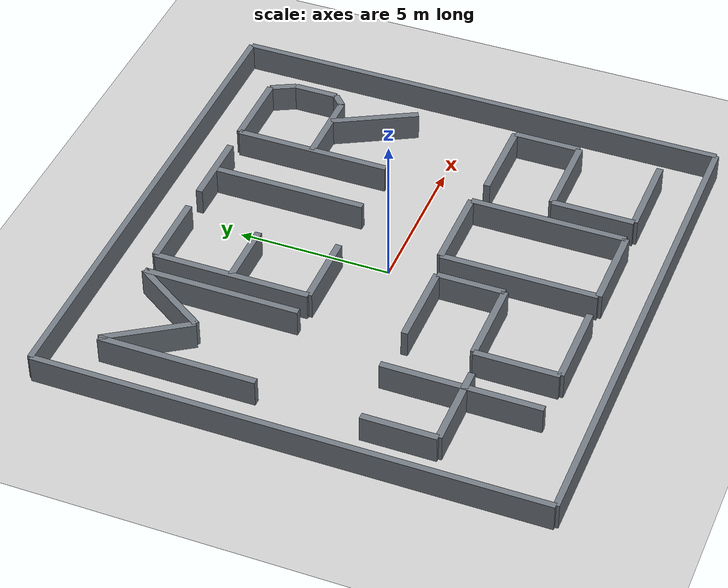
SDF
<?xml version='1.0' encoding='utf-8'?>
<sdf version="1.7">
  <world name="default">
    <light name="sun" type="directional">
      <cast_shadows>1</cast_shadows>
      <pose>0 0 10 0 -0 0</pose>
      <diffuse>0.8 0.8 0.8 1</diffuse>
      <specular>0.2 0.2 0.2 1</specular>
      <attenuation>
        <range>1000</range>
        <constant>0.9</constant>
        <linear>0.01</linear>
        <quadratic>0.001</quadratic>
      </attenuation>
      <direction>-0.5 0.1 -0.9</direction>
      <spot>
        <inner_angle>0</inner_angle>
        <outer_angle>0</outer_angle>
        <falloff>0</falloff>
      </spot>
    </light>
    <model name="ground_plane">
      <static>1</static>
      <link name="link">
        <collision name="collision">
          <geometry>
            <plane>
              <normal>0 0 1</normal>
              <size>100 100</size>
            </plane>
          </geometry>
          <surface>
            <contact>
              <collide_bitmask>65535</collide_bitmask>
              <ode />
            </contact>
            <friction>
              <ode>
                <mu>100</mu>
                <mu2>50</mu2>
              </ode>
              <torsional>
                <ode />
              </torsional>
            </friction>
            <bounce />
          </surface>
          <max_contacts>10</max_contacts>
        </collision>
        <visual name="visual">
          <cast_shadows>0</cast_shadows>
          <geometry>
            <plane>
              <normal>0 0 1</normal>
              <size>100 100</size>
            </plane>
          </geometry>
          <material>
            <script>
              <uri>file://media/materials/scripts/gazebo.material</uri>
              <name>Gazebo/Grey</name>
            </script>
          </material>
        </visual>
        <self_collide>0</self_collide>
        <enable_wind>0</enable_wind>
        <kinematic>0</kinematic>
      </link>
    </model>
    <gravity>0 0 -9.8</gravity>
    <magnetic_field>6e-06 2.3e-05 -4.2e-05</magnetic_field>
    <atmosphere type="adiabatic" />
    <physics type="ode">
      <max_step_size>0.001</max_step_size>
      <real_time_factor>1</real_time_factor>
      <real_time_update_rate>1000</real_time_update_rate>
    </physics>
    <scene>
      <ambient>0.4 0.4 0.4 1</ambient>
      <background>0.7 0.7 0.7 1</background>
      <shadows>1</shadows>
    </scene>
    <audio>
      <device>default</device>
    </audio>
    <wind />
    <spherical_coordinates>
      <surface_model>EARTH_WGS84</surface_model>
      <latitude_deg>0</latitude_deg>
      <longitude_deg>0</longitude_deg>
      <elevation>0</elevation>
      <heading_deg>0</heading_deg>
    </spherical_coordinates>
    <gui fullscreen="0">
      <camera name="user_camera">
        <pose>0 0 26 0 1.55 0</pose>
        <view_controller>orbit</view_controller>
        <projection_type>perspective</projection_type>
      </camera>
    </gui>
    <model name="letter_wall_000">
      <static>1</static>
      <pose>0.000000 -8.150000 0.450000 0 0 0.0000000</pose>
      <link name="link">
        <collision name="collision">
          <geometry>
            <box>
              <size>16.300000 0.200000 0.900000</size>
            </box>
          </geometry>
        </collision>
        <visual name="visual">
          <geometry>
            <box>
              <size>16.300000 0.200000 0.900000</size>
            </box>
          </geometry>
          <material>
            <ambient>0.32 0.34 0.38 1</ambient>
            <diffuse>0.45 0.48 0.51 1</diffuse>
            <specular>0.08 0.08 0.08 1</specular>
          </material>
        </visual>
        <self_collide>0</self_collide>
      </link>
    </model>
    <model name="letter_wall_001">
      <static>1</static>
      <pose>8.150000 0.000000 0.450000 0 0 1.5707963</pose>
      <link name="link">
        <collision name="collision">
          <geometry>
            <box>
              <size>16.300000 0.200000 0.900000</size>
            </box>
          </geometry>
        </collision>
        <visual name="visual">
          <geometry>
            <box>
              <size>16.300000 0.200000 0.900000</size>
            </box>
          </geometry>
          <material>
            <ambient>0.32 0.34 0.38 1</ambient>
            <diffuse>0.45 0.48 0.51 1</diffuse>
            <specular>0.08 0.08 0.08 1</specular>
          </material>
        </visual>
        <self_collide>0</self_collide>
      </link>
    </model>
    <model name="letter_wall_002">
      <static>1</static>
      <pose>0.000000 8.150000 0.450000 0 0 3.1415927</pose>
      <link name="link">
        <collision name="collision">
          <geometry>
            <box>
              <size>16.300000 0.200000 0.900000</size>
            </box>
          </geometry>
        </collision>
        <visual name="visual">
          <geometry>
            <box>
              <size>16.300000 0.200000 0.900000</size>
            </box>
          </geometry>
          <material>
            <ambient>0.32 0.34 0.38 1</ambient>
            <diffuse>0.45 0.48 0.51 1</diffuse>
            <specular>0.08 0.08 0.08 1</specular>
          </material>
        </visual>
        <self_collide>0</self_collide>
      </link>
    </model>
    <model name="letter_wall_003">
      <static>1</static>
      <pose>-8.150000 0.000000 0.450000 0 0 -1.5707963</pose>
      <link name="link">
        <collision name="collision">
          <geometry>
            <box>
              <size>16.300000 0.200000 0.900000</size>
            </box>
          </geometry>
        </collision>
        <visual name="visual">
          <geometry>
            <box>
              <size>16.300000 0.200000 0.900000</size>
            </box>
          </geometry>
          <material>
            <ambient>0.32 0.34 0.38 1</ambient>
            <diffuse>0.45 0.48 0.51 1</diffuse>
            <specular>0.08 0.08 0.08 1</specular>
          </material>
        </visual>
        <self_collide>0</self_collide>
      </link>
    </model>
    <model name="letter_wall_004">
      <static>1</static>
      <pose>-6.680000 4.100000 0.450000 0 0 1.5707963</pose>
      <link name="link">
        <collision name="collision">
          <geometry>
            <box>
              <size>5.100000 0.220000 0.900000</size>
            </box>
          </geometry>
        </collision>
        <visual name="visual">
          <geometry>
            <box>
              <size>5.100000 0.220000 0.900000</size>
            </box>
          </geometry>
          <material>
            <ambient>0.32 0.34 0.38 1</ambient>
            <diffuse>0.45 0.48 0.51 1</diffuse>
            <specular>0.08 0.08 0.08 1</specular>
          </material>
        </visual>
        <self_collide>0</self_collide>
      </link>
    </model>
    <model name="letter_wall_005">
      <static>1</static>
      <pose>-5.880000 5.426000 0.450000 0 0 -0.9918982</pose>
      <link name="link">
        <collision name="collision">
          <geometry>
            <box>
              <size>2.924501 0.220000 0.900000</size>
            </box>
          </geometry>
        </collision>
        <visual name="visual">
          <geometry>
            <box>
              <size>2.924501 0.220000 0.900000</size>
            </box>
          </geometry>
          <material>
            <ambient>0.32 0.34 0.38 1</ambient>
            <diffuse>0.45 0.48 0.51 1</diffuse>
            <specular>0.08 0.08 0.08 1</specular>
          </material>
        </visual>
        <self_collide>0</self_collide>
      </link>
    </model>
    <model name="letter_wall_006">
      <static>1</static>
      <pose>-4.280000 5.426000 0.450000 0 0 0.9918982</pose>
      <link name="link">
        <collision name="collision">
          <geometry>
            <box>
              <size>2.924501 0.220000 0.900000</size>
            </box>
          </geometry>
        </collision>
        <visual name="visual">
          <geometry>
            <box>
              <size>2.924501 0.220000 0.900000</size>
            </box>
          </geometry>
          <material>
            <ambient>0.32 0.34 0.38 1</ambient>
            <diffuse>0.45 0.48 0.51 1</diffuse>
            <specular>0.08 0.08 0.08 1</specular>
          </material>
        </visual>
        <self_collide>0</self_collide>
      </link>
    </model>
    <model name="letter_wall_007">
      <static>1</static>
      <pose>-3.480000 4.100000 0.450000 0 0 -1.5707963</pose>
      <link name="link">
        <collision name="collision">
          <geometry>
            <box>
              <size>5.100000 0.220000 0.900000</size>
            </box>
          </geometry>
        </collision>
        <visual name="visual">
          <geometry>
            <box>
              <size>5.100000 0.220000 0.900000</size>
            </box>
          </geometry>
          <material>
            <ambient>0.32 0.34 0.38 1</ambient>
            <diffuse>0.45 0.48 0.51 1</diffuse>
            <specular>0.08 0.08 0.08 1</specular>
          </material>
        </visual>
        <self_collide>0</self_collide>
      </link>
    </model>
    <model name="letter_wall_008">
      <static>1</static>
      <pose>-1.485000 6.650000 0.450000 0 0 3.1415927</pose>
      <link name="link">
        <collision name="collision">
          <geometry>
            <box>
              <size>2.450000 0.220000 0.900000</size>
            </box>
          </geometry>
        </collision>
        <visual name="visual">
          <geometry>
            <box>
              <size>2.450000 0.220000 0.900000</size>
            </box>
          </geometry>
          <material>
            <ambient>0.32 0.34 0.38 1</ambient>
            <diffuse>0.45 0.48 0.51 1</diffuse>
            <specular>0.08 0.08 0.08 1</specular>
          </material>
        </visual>
        <self_collide>0</self_collide>
      </link>
    </model>
    <model name="letter_wall_009">
      <static>1</static>
      <pose>-2.710000 4.100000 0.450000 0 0 -1.5707963</pose>
      <link name="link">
        <collision name="collision">
          <geometry>
            <box>
              <size>5.100000 0.220000 0.900000</size>
            </box>
          </geometry>
        </collision>
        <visual name="visual">
          <geometry>
            <box>
              <size>5.100000 0.220000 0.900000</size>
            </box>
          </geometry>
          <material>
            <ambient>0.32 0.34 0.38 1</ambient>
            <diffuse>0.45 0.48 0.51 1</diffuse>
            <specular>0.08 0.08 0.08 1</specular>
          </material>
        </visual>
        <self_collide>0</self_collide>
      </link>
    </model>
    <model name="letter_wall_010">
      <static>1</static>
      <pose>-1.668750 4.100000 0.450000 0 0 0.0000000</pose>
      <link name="link">
        <collision name="collision">
          <geometry>
            <box>
              <size>2.082500 0.220000 0.900000</size>
            </box>
          </geometry>
        </collision>
        <visual name="visual">
          <geometry>
            <box>
              <size>2.082500 0.220000 0.900000</size>
            </box>
          </geometry>
          <material>
            <ambient>0.32 0.34 0.38 1</ambient>
            <diffuse>0.45 0.48 0.51 1</diffuse>
            <specular>0.08 0.08 0.08 1</specular>
          </material>
        </visual>
        <self_collide>0</self_collide>
      </link>
    </model>
    <model name="letter_wall_011">
      <static>1</static>
      <pose>-1.485000 1.550000 0.450000 0 0 0.0000000</pose>
      <link name="link">
        <collision name="collision">
          <geometry>
            <box>
              <size>2.450000 0.220000 0.900000</size>
            </box>
          </geometry>
        </collision>
        <visual name="visual">
          <geometry>
            <box>
              <size>2.450000 0.220000 0.900000</size>
            </box>
          </geometry>
          <material>
            <ambient>0.32 0.34 0.38 1</ambient>
            <diffuse>0.45 0.48 0.51 1</diffuse>
            <specular>0.08 0.08 0.08 1</specular>
          </material>
        </visual>
        <self_collide>0</self_collide>
      </link>
    </model>
    <model name="letter_wall_012">
      <static>1</static>
      <pose>1.735000 6.650000 0.450000 0 0 0.0000000</pose>
      <link name="link">
        <collision name="collision">
          <geometry>
            <box>
              <size>2.450000 0.220000 0.900000</size>
            </box>
          </geometry>
        </collision>
        <visual name="visual">
          <geometry>
            <box>
              <size>2.450000 0.220000 0.900000</size>
            </box>
          </geometry>
          <material>
            <ambient>0.32 0.34 0.38 1</ambient>
            <diffuse>0.45 0.48 0.51 1</diffuse>
            <specular>0.08 0.08 0.08 1</specular>
          </material>
        </visual>
        <self_collide>0</self_collide>
      </link>
    </model>
    <model name="letter_wall_013">
      <static>1</static>
      <pose>1.735000 4.100000 0.450000 0 0 -1.5707963</pose>
      <link name="link">
        <collision name="collision">
          <geometry>
            <box>
              <size>5.100000 0.220000 0.900000</size>
            </box>
          </geometry>
        </collision>
        <visual name="visual">
          <geometry>
            <box>
              <size>5.100000 0.220000 0.900000</size>
            </box>
          </geometry>
          <material>
            <ambient>0.32 0.34 0.38 1</ambient>
            <diffuse>0.45 0.48 0.51 1</diffuse>
            <specular>0.08 0.08 0.08 1</specular>
          </material>
        </visual>
        <self_collide>0</self_collide>
      </link>
    </model>
    <model name="letter_wall_014">
      <static>1</static>
      <pose>3.730000 4.100000 0.450000 0 0 1.5707963</pose>
      <link name="link">
        <collision name="collision">
          <geometry>
            <box>
              <size>5.100000 0.220000 0.900000</size>
            </box>
          </geometry>
        </collision>
        <visual name="visual">
          <geometry>
            <box>
              <size>5.100000 0.220000 0.900000</size>
            </box>
          </geometry>
          <material>
            <ambient>0.32 0.34 0.38 1</ambient>
            <diffuse>0.45 0.48 0.51 1</diffuse>
            <specular>0.08 0.08 0.08 1</specular>
          </material>
        </visual>
        <self_collide>0</self_collide>
      </link>
    </model>
    <model name="letter_wall_015">
      <static>1</static>
      <pose>4.983750 6.650000 0.450000 0 0 0.0000000</pose>
      <link name="link">
        <collision name="collision">
          <geometry>
            <box>
              <size>2.507500 0.220000 0.900000</size>
            </box>
          </geometry>
        </collision>
        <visual name="visual">
          <geometry>
            <box>
              <size>2.507500 0.220000 0.900000</size>
            </box>
          </geometry>
          <material>
            <ambient>0.32 0.34 0.38 1</ambient>
            <diffuse>0.45 0.48 0.51 1</diffuse>
            <specular>0.08 0.08 0.08 1</specular>
          </material>
        </visual>
        <self_collide>0</self_collide>
      </link>
    </model>
    <model name="letter_wall_016">
      <static>1</static>
      <pose>6.429250 6.267500 0.450000 0 0 -1.1061035</pose>
      <link name="link">
        <collision name="collision">
          <geometry>
            <box>
              <size>0.855744 0.220000 0.900000</size>
            </box>
          </geometry>
        </collision>
        <visual name="visual">
          <geometry>
            <box>
              <size>0.855744 0.220000 0.900000</size>
            </box>
          </geometry>
          <material>
            <ambient>0.32 0.34 0.38 1</ambient>
            <diffuse>0.45 0.48 0.51 1</diffuse>
            <specular>0.08 0.08 0.08 1</specular>
          </material>
        </visual>
        <self_collide>0</self_collide>
      </link>
    </model>
    <model name="letter_wall_017">
      <static>1</static>
      <pose>6.621000 5.171000 0.450000 0 0 -1.5707963</pose>
      <link name="link">
        <collision name="collision">
          <geometry>
            <box>
              <size>1.428000 0.220000 0.900000</size>
            </box>
          </geometry>
        </collision>
        <visual name="visual">
          <geometry>
            <box>
              <size>1.428000 0.220000 0.900000</size>
            </box>
          </geometry>
          <material>
            <ambient>0.32 0.34 0.38 1</ambient>
            <diffuse>0.45 0.48 0.51 1</diffuse>
            <specular>0.08 0.08 0.08 1</specular>
          </material>
        </visual>
        <self_collide>0</self_collide>
      </link>
    </model>
    <model name="letter_wall_018">
      <static>1</static>
      <pose>6.429250 4.278500 0.450000 0 0 -2.3919659</pose>
      <link name="link">
        <collision name="collision">
          <geometry>
            <box>
              <size>0.523948 0.220000 0.900000</size>
            </box>
          </geometry>
        </collision>
        <visual name="visual">
          <geometry>
            <box>
              <size>0.523948 0.220000 0.900000</size>
            </box>
          </geometry>
          <material>
            <ambient>0.32 0.34 0.38 1</ambient>
            <diffuse>0.45 0.48 0.51 1</diffuse>
            <specular>0.08 0.08 0.08 1</specular>
          </material>
        </visual>
        <self_collide>0</self_collide>
      </link>
    </model>
    <model name="letter_wall_019">
      <static>1</static>
      <pose>4.983750 4.100000 0.450000 0 0 3.1415927</pose>
      <link name="link">
        <collision name="collision">
          <geometry>
            <box>
              <size>2.507500 0.220000 0.900000</size>
            </box>
          </geometry>
        </collision>
        <visual name="visual">
          <geometry>
            <box>
              <size>2.507500 0.220000 0.900000</size>
            </box>
          </geometry>
          <material>
            <ambient>0.32 0.34 0.38 1</ambient>
            <diffuse>0.45 0.48 0.51 1</diffuse>
            <specular>0.08 0.08 0.08 1</specular>
          </material>
        </visual>
        <self_collide>0</self_collide>
      </link>
    </model>
    <model name="letter_wall_020">
      <static>1</static>
      <pose>6.001500 2.825000 0.450000 0 0 -1.0817554</pose>
      <link name="link">
        <collision name="collision">
          <geometry>
            <box>
              <size>2.888589 0.220000 0.900000</size>
            </box>
          </geometry>
        </collision>
        <visual name="visual">
          <geometry>
            <box>
              <size>2.888589 0.220000 0.900000</size>
            </box>
          </geometry>
          <material>
            <ambient>0.32 0.34 0.38 1</ambient>
            <diffuse>0.45 0.48 0.51 1</diffuse>
            <specular>0.08 0.08 0.08 1</specular>
          </material>
        </visual>
        <self_collide>0</self_collide>
      </link>
    </model>
    <model name="letter_wall_021">
      <static>1</static>
      <pose>-4.691000 -4.100000 0.450000 0 0 1.5707963</pose>
      <link name="link">
        <collision name="collision">
          <geometry>
            <box>
              <size>5.100000 0.220000 0.900000</size>
            </box>
          </geometry>
        </collision>
        <visual name="visual">
          <geometry>
            <box>
              <size>5.100000 0.220000 0.900000</size>
            </box>
          </geometry>
          <material>
            <ambient>0.32 0.34 0.38 1</ambient>
            <diffuse>0.45 0.48 0.51 1</diffuse>
            <specular>0.08 0.08 0.08 1</specular>
          </material>
        </visual>
        <self_collide>0</self_collide>
      </link>
    </model>
    <model name="letter_wall_022">
      <static>1</static>
      <pose>-6.875000 -3.003500 0.450000 0 0 -1.5707963</pose>
      <link name="link">
        <collision name="collision">
          <geometry>
            <box>
              <size>2.397000 0.220000 0.900000</size>
            </box>
          </geometry>
        </collision>
        <visual name="visual">
          <geometry>
            <box>
              <size>2.397000 0.220000 0.900000</size>
            </box>
          </geometry>
          <material>
            <ambient>0.32 0.34 0.38 1</ambient>
            <diffuse>0.45 0.48 0.51 1</diffuse>
            <specular>0.08 0.08 0.08 1</specular>
          </material>
        </visual>
        <self_collide>0</self_collide>
      </link>
    </model>
    <model name="letter_wall_023">
      <static>1</static>
      <pose>-5.475000 -4.202000 0.450000 0 0 0.0000000</pose>
      <link name="link">
        <collision name="collision">
          <geometry>
            <box>
              <size>2.800000 0.220000 0.900000</size>
            </box>
          </geometry>
        </collision>
        <visual name="visual">
          <geometry>
            <box>
              <size>2.800000 0.220000 0.900000</size>
            </box>
          </geometry>
          <material>
            <ambient>0.32 0.34 0.38 1</ambient>
            <diffuse>0.45 0.48 0.51 1</diffuse>
            <specular>0.08 0.08 0.08 1</specular>
          </material>
        </visual>
        <self_collide>0</self_collide>
      </link>
    </model>
    <model name="letter_wall_024">
      <static>1</static>
      <pose>-1.825000 -1.754000 0.450000 0 0 0.0000000</pose>
      <link name="link">
        <collision name="collision">
          <geometry>
            <box>
              <size>2.800000 0.220000 0.900000</size>
            </box>
          </geometry>
        </collision>
        <visual name="visual">
          <geometry>
            <box>
              <size>2.800000 0.220000 0.900000</size>
            </box>
          </geometry>
          <material>
            <ambient>0.32 0.34 0.38 1</ambient>
            <diffuse>0.45 0.48 0.51 1</diffuse>
            <specular>0.08 0.08 0.08 1</specular>
          </material>
        </visual>
        <self_collide>0</self_collide>
      </link>
    </model>
    <model name="letter_wall_025">
      <static>1</static>
      <pose>-0.425000 -2.850500 0.450000 0 0 -1.5707963</pose>
      <link name="link">
        <collision name="collision">
          <geometry>
            <box>
              <size>2.193000 0.220000 0.900000</size>
            </box>
          </geometry>
        </collision>
        <visual name="visual">
          <geometry>
            <box>
              <size>2.193000 0.220000 0.900000</size>
            </box>
          </geometry>
          <material>
            <ambient>0.32 0.34 0.38 1</ambient>
            <diffuse>0.45 0.48 0.51 1</diffuse>
            <specular>0.08 0.08 0.08 1</specular>
          </material>
        </visual>
        <self_collide>0</self_collide>
      </link>
    </model>
    <model name="letter_wall_026">
      <static>1</static>
      <pose>-1.825000 -3.947000 0.450000 0 0 3.1415927</pose>
      <link name="link">
        <collision name="collision">
          <geometry>
            <box>
              <size>2.800000 0.220000 0.900000</size>
            </box>
          </geometry>
        </collision>
        <visual name="visual">
          <geometry>
            <box>
              <size>2.800000 0.220000 0.900000</size>
            </box>
          </geometry>
          <material>
            <ambient>0.32 0.34 0.38 1</ambient>
            <diffuse>0.45 0.48 0.51 1</diffuse>
            <specular>0.08 0.08 0.08 1</specular>
          </material>
        </visual>
        <self_collide>0</self_collide>
      </link>
    </model>
    <model name="letter_wall_027">
      <static>1</static>
      <pose>-3.225000 -5.298500 0.450000 0 0 -1.5707963</pose>
      <link name="link">
        <collision name="collision">
          <geometry>
            <box>
              <size>2.703000 0.220000 0.900000</size>
            </box>
          </geometry>
        </collision>
        <visual name="visual">
          <geometry>
            <box>
              <size>2.703000 0.220000 0.900000</size>
            </box>
          </geometry>
          <material>
            <ambient>0.32 0.34 0.38 1</ambient>
            <diffuse>0.45 0.48 0.51 1</diffuse>
            <specular>0.08 0.08 0.08 1</specular>
          </material>
        </visual>
        <self_collide>0</self_collide>
      </link>
    </model>
    <model name="letter_wall_028">
      <static>1</static>
      <pose>-1.825000 -6.650000 0.450000 0 0 0.0000000</pose>
      <link name="link">
        <collision name="collision">
          <geometry>
            <box>
              <size>2.800000 0.220000 0.900000</size>
            </box>
          </geometry>
        </collision>
        <visual name="visual">
          <geometry>
            <box>
              <size>2.800000 0.220000 0.900000</size>
            </box>
          </geometry>
          <material>
            <ambient>0.32 0.34 0.38 1</ambient>
            <diffuse>0.45 0.48 0.51 1</diffuse>
            <specular>0.08 0.08 0.08 1</specular>
          </material>
        </visual>
        <self_collide>0</self_collide>
      </link>
    </model>
    <model name="letter_wall_029">
      <static>1</static>
      <pose>0.425000 -4.100000 0.450000 0 0 1.5707963</pose>
      <link name="link">
        <collision name="collision">
          <geometry>
            <box>
              <size>5.100000 0.220000 0.900000</size>
            </box>
          </geometry>
        </collision>
        <visual name="visual">
          <geometry>
            <box>
              <size>5.100000 0.220000 0.900000</size>
            </box>
          </geometry>
          <material>
            <ambient>0.32 0.34 0.38 1</ambient>
            <diffuse>0.45 0.48 0.51 1</diffuse>
            <specular>0.08 0.08 0.08 1</specular>
          </material>
        </visual>
        <self_collide>0</self_collide>
      </link>
    </model>
    <model name="letter_wall_030">
      <static>1</static>
      <pose>1.825000 -1.550000 0.450000 0 0 0.0000000</pose>
      <link name="link">
        <collision name="collision">
          <geometry>
            <box>
              <size>2.800000 0.220000 0.900000</size>
            </box>
          </geometry>
        </collision>
        <visual name="visual">
          <geometry>
            <box>
              <size>2.800000 0.220000 0.900000</size>
            </box>
          </geometry>
          <material>
            <ambient>0.32 0.34 0.38 1</ambient>
            <diffuse>0.45 0.48 0.51 1</diffuse>
            <specular>0.08 0.08 0.08 1</specular>
          </material>
        </visual>
        <self_collide>0</self_collide>
      </link>
    </model>
    <model name="letter_wall_031">
      <static>1</static>
      <pose>3.225000 -4.100000 0.450000 0 0 -1.5707963</pose>
      <link name="link">
        <collision name="collision">
          <geometry>
            <box>
              <size>5.100000 0.220000 0.900000</size>
            </box>
          </geometry>
        </collision>
        <visual name="visual">
          <geometry>
            <box>
              <size>5.100000 0.220000 0.900000</size>
            </box>
          </geometry>
          <material>
            <ambient>0.32 0.34 0.38 1</ambient>
            <diffuse>0.45 0.48 0.51 1</diffuse>
            <specular>0.08 0.08 0.08 1</specular>
          </material>
        </visual>
        <self_collide>0</self_collide>
      </link>
    </model>
    <model name="letter_wall_032">
      <static>1</static>
      <pose>1.825000 -6.650000 0.450000 0 0 3.1415927</pose>
      <link name="link">
        <collision name="collision">
          <geometry>
            <box>
              <size>2.800000 0.220000 0.900000</size>
            </box>
          </geometry>
        </collision>
        <visual name="visual">
          <geometry>
            <box>
              <size>2.800000 0.220000 0.900000</size>
            </box>
          </geometry>
          <material>
            <ambient>0.32 0.34 0.38 1</ambient>
            <diffuse>0.45 0.48 0.51 1</diffuse>
            <specular>0.08 0.08 0.08 1</specular>
          </material>
        </visual>
        <self_collide>0</self_collide>
      </link>
    </model>
    <model name="letter_wall_033">
      <static>1</static>
      <pose>5.475000 -1.754000 0.450000 0 0 0.0000000</pose>
      <link name="link">
        <collision name="collision">
          <geometry>
            <box>
              <size>2.800000 0.220000 0.900000</size>
            </box>
          </geometry>
        </collision>
        <visual name="visual">
          <geometry>
            <box>
              <size>2.800000 0.220000 0.900000</size>
            </box>
          </geometry>
          <material>
            <ambient>0.32 0.34 0.38 1</ambient>
            <diffuse>0.45 0.48 0.51 1</diffuse>
            <specular>0.08 0.08 0.08 1</specular>
          </material>
        </visual>
        <self_collide>0</self_collide>
      </link>
    </model>
    <model name="letter_wall_034">
      <static>1</static>
      <pose>6.875000 -2.850500 0.450000 0 0 -1.5707963</pose>
      <link name="link">
        <collision name="collision">
          <geometry>
            <box>
              <size>2.193000 0.220000 0.900000</size>
            </box>
          </geometry>
        </collision>
        <visual name="visual">
          <geometry>
            <box>
              <size>2.193000 0.220000 0.900000</size>
            </box>
          </geometry>
          <material>
            <ambient>0.32 0.34 0.38 1</ambient>
            <diffuse>0.45 0.48 0.51 1</diffuse>
            <specular>0.08 0.08 0.08 1</specular>
          </material>
        </visual>
        <self_collide>0</self_collide>
      </link>
    </model>
    <model name="letter_wall_035">
      <static>1</static>
      <pose>5.475000 -3.947000 0.450000 0 0 3.1415927</pose>
      <link name="link">
        <collision name="collision">
          <geometry>
            <box>
              <size>2.800000 0.220000 0.900000</size>
            </box>
          </geometry>
        </collision>
        <visual name="visual">
          <geometry>
            <box>
              <size>2.800000 0.220000 0.900000</size>
            </box>
          </geometry>
          <material>
            <ambient>0.32 0.34 0.38 1</ambient>
            <diffuse>0.45 0.48 0.51 1</diffuse>
            <specular>0.08 0.08 0.08 1</specular>
          </material>
        </visual>
        <self_collide>0</self_collide>
      </link>
    </model>
    <model name="letter_wall_036">
      <static>1</static>
      <pose>4.075000 -5.298500 0.450000 0 0 -1.5707963</pose>
      <link name="link">
        <collision name="collision">
          <geometry>
            <box>
              <size>2.703000 0.220000 0.900000</size>
            </box>
          </geometry>
        </collision>
        <visual name="visual">
          <geometry>
            <box>
              <size>2.703000 0.220000 0.900000</size>
            </box>
          </geometry>
          <material>
            <ambient>0.32 0.34 0.38 1</ambient>
            <diffuse>0.45 0.48 0.51 1</diffuse>
            <specular>0.08 0.08 0.08 1</specular>
          </material>
        </visual>
        <self_collide>0</self_collide>
      </link>
    </model>
    <model name="letter_wall_037">
      <static>1</static>
      <pose>5.475000 -6.650000 0.450000 0 0 0.0000000</pose>
      <link name="link">
        <collision name="collision">
          <geometry>
            <box>
              <size>2.800000 0.220000 0.900000</size>
            </box>
          </geometry>
        </collision>
        <visual name="visual">
          <geometry>
            <box>
              <size>2.800000 0.220000 0.900000</size>
            </box>
          </geometry>
          <material>
            <ambient>0.32 0.34 0.38 1</ambient>
            <diffuse>0.45 0.48 0.51 1</diffuse>
            <specular>0.08 0.08 0.08 1</specular>
          </material>
        </visual>
        <self_collide>0</self_collide>
      </link>
    </model>
  </world>
</sdf>
